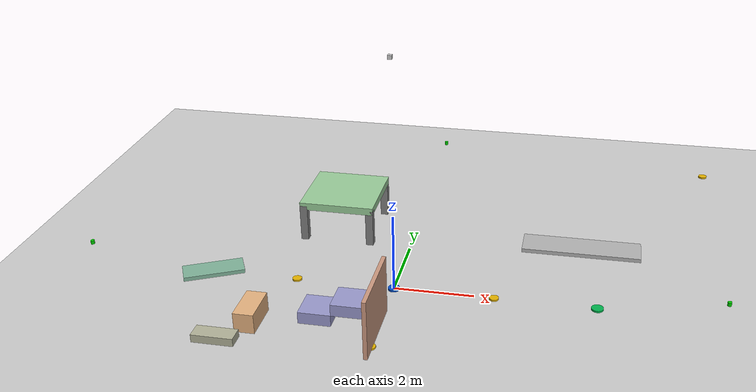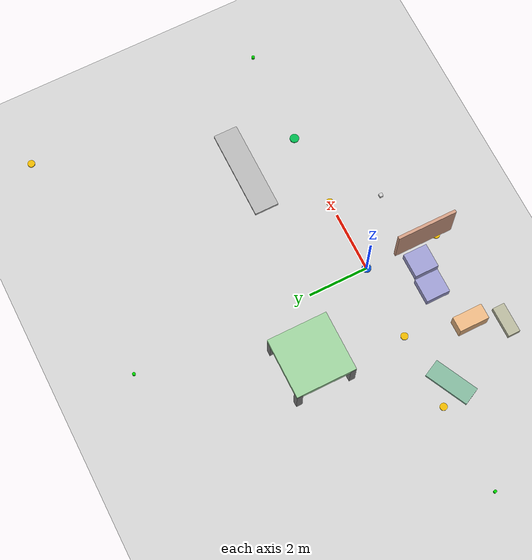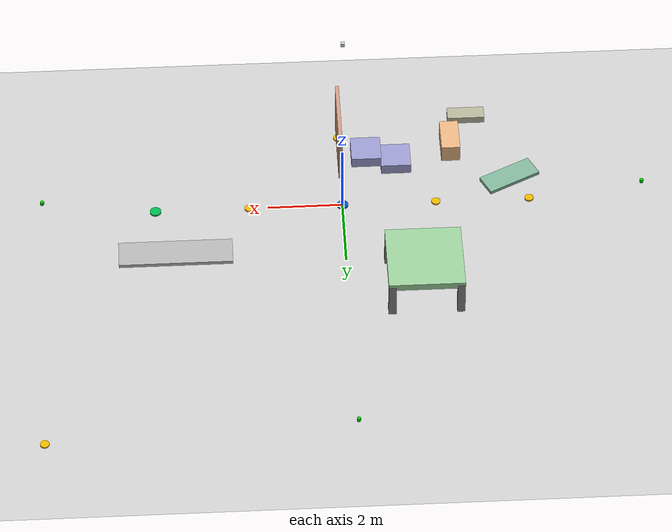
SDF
<?xml version="1.0"?>
<sdf version="1.6" xmlns:xi="http://www.w3.org/2001/XInclude">
  <world name="transformer_world">
    <!-- Physics Settings -->
    <physics type="ode">
      <max_step_size>0.001</max_step_size>
      <real_time_factor>1.0</real_time_factor>
      <real_time_update_rate>1000</real_time_update_rate>
      <gravity>0 0 -9.80665</gravity>
      <ode>
        <solver_type>quick</solver_type>
        <min_step_size>0.0001</min_step_size>
        <iters>50</iters>
        <precon_iters>0</precon_iters>
        <sor>1.3</sor>
        <use_dynamic_moi_rescaling>true</use_dynamic_moi_rescaling>
      </ode>
    </physics>

    <!-- Ambient Light -->
    <ambient>0.3 0.3 0.3 1</ambient>

    <!-- Sun Light -->
    <light name="sun" type="directional">
      <cast_shadows>true</cast_shadows>
      <direction>-1 -1 -1</direction>
      <diffuse>0.8 0.8 0.8 1</diffuse>
      <specular>0.1 0.1 0.1 1</specular>
      <attenuation>
        <range>1000000</range>
        <constant>0.9</constant>
        <linear>0.01</linear>
        <quadratic>0.001</quadratic>
      </attenuation>
    </light>

    <!-- Ground Plane -->
    <include>
      <uri>model://ground_plane</uri>
    </include>

    <!-- Spawn Points Documentation (referenced in config/spawn_points.yaml) -->

    <!-- OBSTACLES FOR TRANSFORMATION TESTING -->

    <!-- Ramp: Tests climbing capability for both vehicular and humanoid forms -->
    <include>
      <uri>model://ramp</uri>
      <pose>3.0 2.0 0 0 0 0</pose>
    </include>

    <!-- Platform: Elevated surface requiring transformation/climbing to access -->
    <include>
      <uri>model://platform</uri>
      <pose>-3.0 2.0 0 0 0 0</pose>
    </include>

    <!-- Wall: Barrier requiring navigation or transformation to overcome -->
    <include>
      <uri>model://wall</uri>
      <pose>0.0 -3.0 0 0 0 1.5708</pose>
    </include>

     <!-- Obstacle Course: Combined challenges for comprehensive testing -->
     <include>
       <uri>model://obstacle_course</uri>
       <pose>-5.0 -2.0 0 0 0 0</pose>
     </include>

     <!-- SENSOR PLACEMENTS FOR ROBOT PERCEPTION TESTING -->

     <!-- RGB Camera: Overhead view of the transformation area -->
     <include>
       <uri>model://rgb_camera</uri>
       <pose>0.0 0.0 6.0 0 0 0</pose>
     </include>

     <!-- LIDAR 2D: Perimeter scanning at multiple elevations -->
     <include>
       <uri>model://lidar_2d</uri>
       <pose>-8.0 0.0 0.5 0 0 0</pose>
     </include>

     <include>
       <uri>model://lidar_2d</uri>
       <pose>8.0 0.0 0.5 0 0 0</pose>
     </include>

     <include>
       <uri>model://lidar_2d</uri>
       <pose>0.0 8.0 0.5 0 0 -1.5708</pose>
     </include>

      <!-- IMU Sensor: Near spawn points for orientation reference -->
      <include>
        <uri>model://imu_sensor</uri>
        <pose>0.0 0.0 0.2 0 0 0</pose>
      </include>

    <!-- SPAWN POINT MARKERS (Visual indicators for demo scenarios) -->

    <!-- Humanoid Default Spawn Marker -->
    <include>
      <uri>model://spawn_marker_humanoid</uri>
      <pose>0.0 0.0 0.0 0 0 0</pose>
    </include>

    <!-- Vehicular Default Spawn Marker -->
    <include>
      <uri>model://spawn_marker_vehicular</uri>
      <pose>5.0 0.0 0.0 0 0 0</pose>
    </include>

    <!-- Additional Scenario Spawn Markers -->
    <include>
      <uri>model://spawn_marker_generic</uri>
      <pose>2.5 0.0 0.0 0 0 0</pose>
    </include>

    <include>
      <uri>model://spawn_marker_generic</uri>
      <pose>-2.5 0.0 0.0 0 0 0</pose>
    </include>

    <include>
      <uri>model://spawn_marker_generic</uri>
      <pose>-5.0 0.0 0.0 0 0 0</pose>
    </include>

    <include>
      <uri>model://spawn_marker_generic</uri>
      <pose>0.0 -2.5 0.0 0 0 0</pose>
    </include>

    <include>
      <uri>model://spawn_marker_generic</uri>
      <pose>8.0 8.0 0.0 0 0 0</pose>
    </include>

    </world>
  </sdf>

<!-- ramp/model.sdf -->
<sdf version="1.6">
  <model name="ramp">
    <static>true</static>
    <link name="ramp_link">
      <collision name="ramp_collision">
        <geometry>
          <box>
            <size>3.0 0.8 0.1</size>
          </box>
        </geometry>
        <pose>1.5 0 0.5 0 0 0</pose>
      </collision>
      <visual name="ramp_visual">
        <geometry>
          <box>
            <size>3.0 0.8 0.1</size>
          </box>
        </geometry>
        <pose>1.5 0 0.5 0 0 0</pose>
        <material>
          <ambient>0.5 0.5 0.5 1</ambient>
          <diffuse>0.7 0.7 0.7 1</diffuse>
          <specular>0.2 0.2 0.2 1</specular>
        </material>
      </visual>
    </link>
  </model>
</sdf>

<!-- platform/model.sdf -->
<sdf version="1.6">
  <model name="platform">
    <static>true</static>
    <link name="platform_link">
      <collision name="platform_collision">
        <geometry>
          <box>
            <size>2.0 2.0 0.2</size>
          </box>
        </geometry>
        <pose>1.0 1.0 1.0 0 0 0</pose>
      </collision>
      <visual name="platform_visual">
        <geometry>
          <box>
            <size>2.0 2.0 0.2</size>
          </box>
        </geometry>
        <pose>1.0 1.0 1.0 0 0 0</pose>
        <material>
          <ambient>0.4 0.6 0.4 1</ambient>
          <diffuse>0.6 0.8 0.6 1</diffuse>
          <specular>0.1 0.1 0.1 1</specular>
        </material>
      </visual>
    </link>

    <!-- Vertical support pillars -->
    <link name="pillar_1">
      <collision name="pillar_1_collision">
        <geometry>
          <box>
            <size>0.2 0.2 1.0</size>
          </box>
        </geometry>
        <pose>0.1 0.1 0.5 0 0 0</pose>
      </collision>
      <visual name="pillar_1_visual">
        <geometry>
          <box>
            <size>0.2 0.2 1.0</size>
          </box>
        </geometry>
        <pose>0.1 0.1 0.5 0 0 0</pose>
        <material>
          <ambient>0.3 0.3 0.3 1</ambient>
          <diffuse>0.5 0.5 0.5 1</diffuse>
        </material>
      </visual>
    </link>

    <link name="pillar_2">
      <collision name="pillar_2_collision">
        <geometry>
          <box>
            <size>0.2 0.2 1.0</size>
          </box>
        </geometry>
        <pose>1.9 0.1 0.5 0 0 0</pose>
      </collision>
      <visual name="pillar_2_visual">
        <geometry>
          <box>
            <size>0.2 0.2 1.0</size>
          </box>
        </geometry>
        <pose>1.9 0.1 0.5 0 0 0</pose>
        <material>
          <ambient>0.3 0.3 0.3 1</ambient>
          <diffuse>0.5 0.5 0.5 1</diffuse>
        </material>
      </visual>
    </link>

    <link name="pillar_3">
      <collision name="pillar_3_collision">
        <geometry>
          <box>
            <size>0.2 0.2 1.0</size>
          </box>
        </geometry>
        <pose>0.1 1.9 0.5 0 0 0</pose>
      </collision>
      <visual name="pillar_3_visual">
        <geometry>
          <box>
            <size>0.2 0.2 1.0</size>
          </box>
        </geometry>
        <pose>0.1 1.9 0.5 0 0 0</pose>
        <material>
          <ambient>0.3 0.3 0.3 1</ambient>
          <diffuse>0.5 0.5 0.5 1</diffuse>
        </material>
      </visual>
    </link>

    <link name="pillar_4">
      <collision name="pillar_4_collision">
        <geometry>
          <box>
            <size>0.2 0.2 1.0</size>
          </box>
        </geometry>
        <pose>1.9 1.9 0.5 0 0 0</pose>
      </collision>
      <visual name="pillar_4_visual">
        <geometry>
          <box>
            <size>0.2 0.2 1.0</size>
          </box>
        </geometry>
        <pose>1.9 1.9 0.5 0 0 0</pose>
        <material>
          <ambient>0.3 0.3 0.3 1</ambient>
          <diffuse>0.5 0.5 0.5 1</diffuse>
        </material>
      </visual>
    </link>
  </model>
</sdf>

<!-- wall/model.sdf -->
<sdf version="1.6">
  <model name="wall">
    <static>true</static>
    <link name="wall_link">
      <collision name="wall_collision">
        <geometry>
          <box>
            <size>2.0 0.1 1.5</size>
          </box>
        </geometry>
        <pose>1.0 0 0.75 0 0 0</pose>
      </collision>
      <visual name="wall_visual">
        <geometry>
          <box>
            <size>2.0 0.1 1.5</size>
          </box>
        </geometry>
        <pose>1.0 0 0.75 0 0 0</pose>
        <material>
          <ambient>0.6 0.4 0.3 1</ambient>
          <diffuse>0.8 0.6 0.5 1</diffuse>
          <specular>0.1 0.1 0.1 1</specular>
        </material>
      </visual>
    </link>
  </model>
</sdf>

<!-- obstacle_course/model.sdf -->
<sdf version="1.6">
  <model name="obstacle_course">
    <static>true</static>

    <!-- Central low wall -->
    <link name="central_wall">
      <collision name="central_wall_collision">
        <geometry>
          <box>
            <size>0.5 1.0 0.5</size>
          </box>
        </geometry>
        <pose>2.0 0 0.25 0 0 0</pose>
      </collision>
      <visual name="central_wall_visual">
        <geometry>
          <box>
            <size>0.5 1.0 0.5</size>
          </box>
        </geometry>
        <pose>2.0 0 0.25 0 0 0</pose>
        <material>
          <ambient>0.7 0.5 0.3 1</ambient>
          <diffuse>0.9 0.7 0.5 1</diffuse>
        </material>
      </visual>
    </link>

    <!-- Step platforms -->
    <link name="step_1">
      <collision name="step_1_collision">
        <geometry>
          <box>
            <size>0.8 0.8 0.3</size>
          </box>
        </geometry>
        <pose>3.5 0.5 0.15 0 0 0</pose>
      </collision>
      <visual name="step_1_visual">
        <geometry>
          <box>
            <size>0.8 0.8 0.3</size>
          </box>
        </geometry>
        <pose>3.5 0.5 0.15 0 0 0</pose>
        <material>
          <ambient>0.4 0.4 0.6 1</ambient>
          <diffuse>0.6 0.6 0.8 1</diffuse>
        </material>
      </visual>
    </link>

    <link name="step_2">
      <collision name="step_2_collision">
        <geometry>
          <box>
            <size>0.8 0.8 0.3</size>
          </box>
        </geometry>
        <pose>4.3 0.5 0.45 0 0 0</pose>
      </collision>
      <visual name="step_2_visual">
        <geometry>
          <box>
            <size>0.8 0.8 0.3</size>
          </box>
        </geometry>
        <pose>4.3 0.5 0.45 0 0 0</pose>
        <material>
          <ambient>0.4 0.4 0.6 1</ambient>
          <diffuse>0.6 0.6 0.8 1</diffuse>
        </material>
      </visual>
    </link>

    <!-- Raised narrow platform -->
    <link name="narrow_platform">
      <collision name="narrow_platform_collision">
        <geometry>
          <box>
            <size>1.0 0.4 0.2</size>
          </box>
        </geometry>
        <pose>1.5 -1.0 0.2 0 0 0</pose>
      </collision>
      <visual name="narrow_platform_visual">
        <geometry>
          <box>
            <size>1.0 0.4 0.2</size>
          </box>
        </geometry>
        <pose>1.5 -1.0 0.2 0 0 0</pose>
        <material>
          <ambient>0.5 0.5 0.4 1</ambient>
          <diffuse>0.7 0.7 0.6 1</diffuse>
        </material>
      </visual>
    </link>

    <!-- Slope element -->
    <link name="slope">
      <collision name="slope_collision">
        <geometry>
          <box>
            <size>1.5 0.6 0.1</size>
          </box>
        </geometry>
        <pose>0.5 1.5 0.35 0 0 0.46365</pose>
      </collision>
      <visual name="slope_visual">
        <geometry>
          <box>
            <size>1.5 0.6 0.1</size>
          </box>
        </geometry>
        <pose>0.5 1.5 0.35 0 0 0.46365</pose>
        <material>
          <ambient>0.3 0.5 0.4 1</ambient>
          <diffuse>0.5 0.7 0.6 1</diffuse>
        </material>
      </visual>
    </link>
  </model>
</sdf>

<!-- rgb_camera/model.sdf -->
<sdf version="1.6">
  <model name="rgb_camera">
    <static>true</static>
    <pose>0 0 2.5 0 0 0</pose>

    <!-- Link -->
    <link name="camera_link">
      <collision name="collision">
        <geometry>
          <box>
            <size>0.1 0.1 0.1</size>
          </box>
        </geometry>
      </collision>
      <visual name="visual">
        <geometry>
          <box>
            <size>0.1 0.1 0.1</size>
          </box>
        </geometry>
        <material>
          <ambient>0.8 0.8 0.8 1</ambient>
          <diffuse>0.8 0.8 0.8 1</diffuse>
        </material>
      </visual>

      <!-- Camera Sensor -->
      <sensor name="camera" type="camera">
        <camera name="camera_sensor">
          <horizontal_fov>1.5708</horizontal_fov>
          <image>
            <width>640</width>
            <height>480</height>
            <format>R8G8B8</format>
          </image>
          <clip>
            <near>0.1</near>
            <far>100</far>
          </clip>
          <noise>
            <type>gaussian</type>
            <mean>0</mean>
            <stddev>0.0</stddev>
          </noise>
        </camera>

        <!-- ROS2 Plugin -->
        <plugin name="camera_controller" filename="libgazebo_ros_camera.so">
          <ros>
            <namespace>/sensors</namespace>
            <remapping>image_raw:=rgb_camera/image_raw</remapping>
          </ros>
          <camera_name>rgb_camera</camera_name>
          <frame_name>camera_link</frame_name>
          <update_rate>30.0</update_rate>
        </plugin>
      </sensor>
    </link>
  </model>
</sdf>

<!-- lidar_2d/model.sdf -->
<sdf version="1.6">
  <model name="lidar_2d">
    <static>true</static>
    <pose>0 0 0.5 0 0 0</pose>

    <!-- Link -->
    <link name="lidar_link">
      <collision name="collision">
        <geometry>
          <cylinder>
            <radius>0.05</radius>
            <length>0.1</length>
          </cylinder>
        </geometry>
      </collision>
      <visual name="visual">
        <geometry>
          <cylinder>
            <radius>0.05</radius>
            <length>0.1</length>
          </cylinder>
        </geometry>
        <material>
          <ambient>0.0 0.8 0.0 1</ambient>
          <diffuse>0.0 0.8 0.0 1</diffuse>
        </material>
      </visual>

      <!-- LIDAR Sensor -->
      <sensor name="lidar" type="ray">
        <ray>
          <scan>
            <horizontal>
              <samples>360</samples>
              <resolution>1</resolution>
              <min_angle>-3.14159</min_angle>
              <max_angle>3.14159</max_angle>
            </horizontal>
            <vertical>
              <samples>1</samples>
              <resolution>1</resolution>
              <min_angle>0</min_angle>
              <max_angle>0</max_angle>
            </vertical>
          </scan>
          <range>
            <min>0.1</min>
            <max>10.0</max>
            <resolution>0.01</resolution>
          </range>
        </ray>

        <always_on>true</always_on>
        <update_rate>10.0</update_rate>

        <!-- ROS2 Plugin -->
        <plugin name="lidar_controller" filename="libgazebo_ros_ray_sensor.so">
          <ros>
            <namespace>/sensors</namespace>
            <remapping>scan:=laser_scan</remapping>
          </ros>
          <frame_name>lidar_link</frame_name>
          <topic_prefix>laser</topic_prefix>
          <update_rate>10.0</update_rate>
        </plugin>
      </sensor>
    </link>
  </model>
</sdf>

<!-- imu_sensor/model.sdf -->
<sdf version="1.6">
  <model name="imu_sensor">
    <static>true</static>
    <pose>0 0 1.0 0 0 0</pose>

    <!-- Link -->
    <link name="imu_link">
      <collision name="collision">
        <geometry>
          <box>
            <size>0.05 0.05 0.02</size>
          </box>
        </geometry>
      </collision>
      <visual name="visual">
        <geometry>
          <box>
            <size>0.05 0.05 0.02</size>
          </box>
        </geometry>
        <material>
          <ambient>0.8 0.0 0.8 1</ambient>
          <diffuse>0.8 0.0 0.8 1</diffuse>
        </material>
      </visual>

      <!-- IMU Sensor -->
      <sensor name="imu" type="imu">
        <always_on>true</always_on>
        <update_rate>200.0</update_rate>

        <imu>
          <noise>
            <type>gaussian</type>
            <rate>
              <mean>0</mean>
              <stddev>0.0</stddev>
            </rate>
            <acceleration>
              <mean>0</mean>
              <stddev>0.0</stddev>
            </acceleration>
          </noise>
        </imu>

        <!-- ROS2 Plugin -->
        <plugin name="imu_controller" filename="libgazebo_ros_imu_sensor.so">
          <ros>
            <namespace>/sensors</namespace>
            <remapping>imu/data:=imu/data</remapping>
          </ros>
          <frame_name>imu_link</frame_name>
          <topic_name>imu/data</topic_name>
          <update_rate>200.0</update_rate>
          <gaussian_noise>0.0</gaussian_noise>
        </plugin>
      </sensor>
    </link>
  </model>
</sdf>

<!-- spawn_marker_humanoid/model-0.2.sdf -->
<sdf version="1.6">
  <model name="spawn_marker_humanoid">
    <static>true</static>
    <pose>0 0 0 0 0 0</pose>

    <link name="marker">
      <visual name="visual">
        <geometry>
          <cylinder>
            <radius>0.15</radius>
            <length>0.05</length>
          </cylinder>
        </geometry>
        <material>
          <ambient>0.0 0.3 0.8 1</ambient>
          <diffuse>0.0 0.3 0.8 1</diffuse>
          <specular>0.5 0.5 0.5 1</specular>
        </material>
      </visual>
      <collision name="collision">
        <geometry>
          <cylinder>
            <radius>0.15</radius>
            <length>0.05</length>
          </cylinder>
        </geometry>
      </collision>
    </link>
  </model>
</sdf>

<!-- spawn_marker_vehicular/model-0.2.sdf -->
<sdf version="1.6">
  <model name="spawn_marker_vehicular">
    <static>true</static>
    <pose>0 0 0 0 0 0</pose>

    <link name="marker">
      <visual name="visual">
        <geometry>
          <cylinder>
            <radius>0.15</radius>
            <length>0.05</length>
          </cylinder>
        </geometry>
        <material>
          <ambient>0.0 0.7 0.3 1</ambient>
          <diffuse>0.0 0.7 0.3 1</diffuse>
          <specular>0.5 0.5 0.5 1</specular>
        </material>
      </visual>
      <collision name="collision">
        <geometry>
          <cylinder>
            <radius>0.15</radius>
            <length>0.05</length>
          </cylinder>
        </geometry>
      </collision>
    </link>
  </model>
</sdf>

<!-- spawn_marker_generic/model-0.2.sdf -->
<sdf version="1.6">
  <model name="spawn_marker_generic">
    <static>true</static>
    <pose>0 0 0 0 0 0</pose>

    <link name="marker">
      <visual name="visual">
        <geometry>
          <cylinder>
            <radius>0.12</radius>
            <length>0.05</length>
          </cylinder>
        </geometry>
        <material>
          <ambient>0.9 0.7 0.0 1</ambient>
          <diffuse>0.9 0.7 0.0 1</diffuse>
          <specular>0.5 0.5 0.5 1</specular>
        </material>
      </visual>
      <collision name="collision">
        <geometry>
          <cylinder>
            <radius>0.12</radius>
            <length>0.05</length>
          </cylinder>
        </geometry>
      </collision>
    </link>
  </model>
</sdf>
